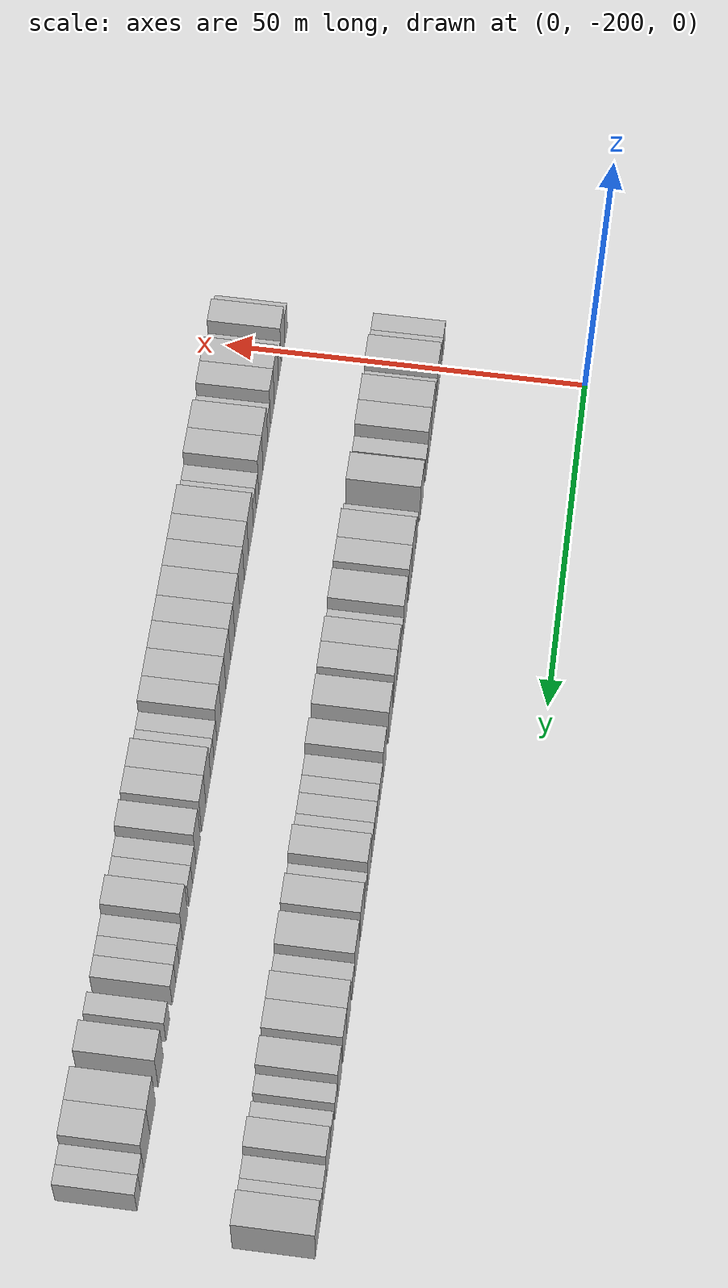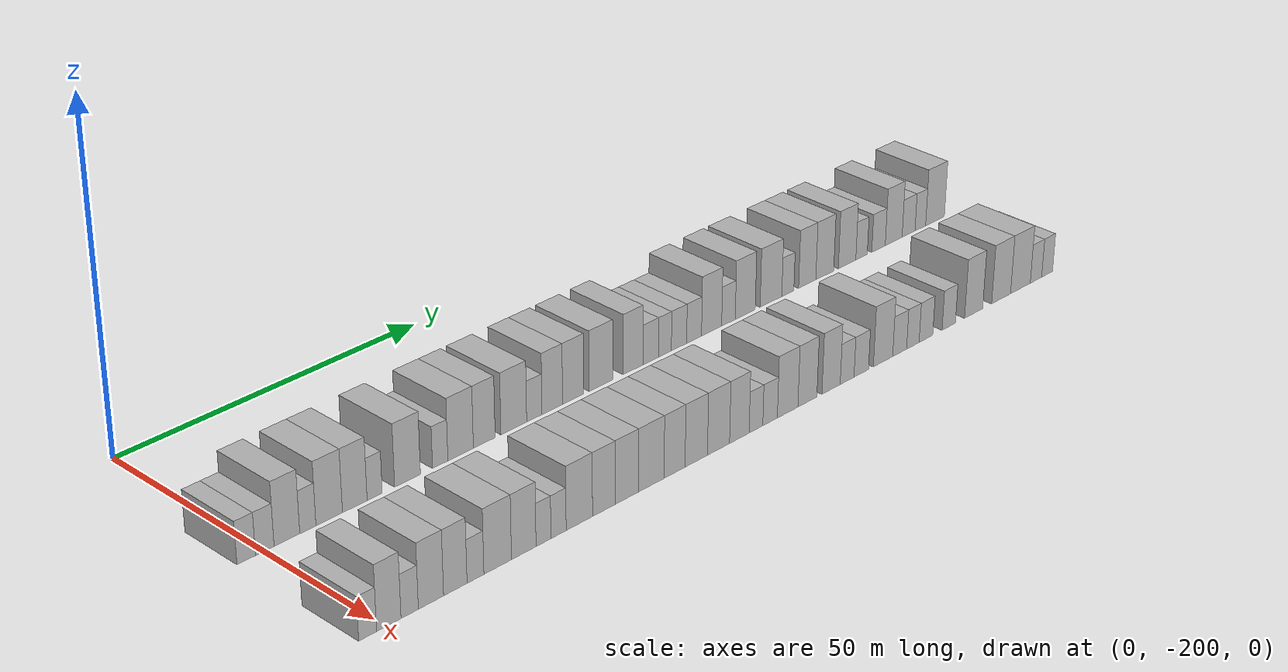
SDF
<sdf version="1.6">
 <world name="default">
  <model name="building_1">
   <static>1</static>
   <pose>25.0000 -202.6168 0 0.000000 0.000000 0.000000</pose>
   <link name="link">
    <pose>0 0 3.00 0 0 0</pose>
    <collision name="collision"><geometry><box><size>10.0000 2.7663 6.0000</size></box></geometry></collision>
    <visual name="visual">
     <cast_shadows>0</cast_shadows>
     <geometry><box><size>10.0000 2.7663 6.0000</size></box></geometry>
     <material>
      <script>
       <uri>model://HANNAS_wall/materials/scripts</uri>
       <uri>model://HANNAS_wall/materials/textures</uri>
       <name>vrc/HANNAS_wall</name>
      </script>
     </material>
    </visual>
   </link>
  </model>
  <model name="building_2">
   <static>1</static>
   <pose>25.0000 -199.8396 0 0.000000 0.000000 0.000000</pose>
   <link name="link">
    <pose>0 0 3.00 0 0 0</pose>
    <collision name="collision"><geometry><box><size>10.0000 2.7883 6.0000</size></box></geometry></collision>
    <visual name="visual">
     <cast_shadows>0</cast_shadows>
     <geometry><box><size>10.0000 2.7883 6.0000</size></box></geometry>
     <material>
      <script>
       <uri>model://HANNAS_wall/materials/scripts</uri>
       <uri>model://HANNAS_wall/materials/textures</uri>
       <name>vrc/HANNAS_wall</name>
      </script>
     </material>
    </visual>
   </link>
  </model>
  <model name="building_3">
   <static>1</static>
   <pose>25.0000 -196.4880 0 0.000000 0.000000 0.000000</pose>
   <link name="link">
    <pose>0 0 4.50 0 0 0</pose>
    <collision name="collision"><geometry><box><size>10.0000 3.9148 9.0000</size></box></geometry></collision>
    <visual name="visual">
     <cast_shadows>0</cast_shadows>
     <geometry><box><size>10.0000 3.9148 9.0000</size></box></geometry>
     <material>
      <script>
       <uri>model://HANNAS_wall/materials/scripts</uri>
       <uri>model://HANNAS_wall/materials/textures</uri>
       <name>vrc/HANNAS_wall</name>
      </script>
     </material>
    </visual>
   </link>
  </model>
  <model name="building_4">
   <static>1</static>
   <pose>25.0000 -193.2830 0 0.000000 0.000000 0.000000</pose>
   <link name="link">
    <pose>0 0 3.00 0 0 0</pose>
    <collision name="collision"><geometry><box><size>10.0000 2.4952 6.0000</size></box></geometry></collision>
    <visual name="visual">
     <cast_shadows>0</cast_shadows>
     <geometry><box><size>10.0000 2.4952 6.0000</size></box></geometry>
     <material>
      <script>
       <uri>model://HANNAS_wall/materials/scripts</uri>
       <uri>model://HANNAS_wall/materials/textures</uri>
       <name>vrc/HANNAS_wall</name>
      </script>
     </material>
    </visual>
   </link>
  </model>
  <model name="building_5">
   <static>1</static>
   <pose>25.0000 -189.9622 0 0.000000 0.000000 0.000000</pose>
   <link name="link">
    <pose>0 0 4.50 0 0 0</pose>
    <collision name="collision"><geometry><box><size>10.0000 4.1462 9.0000</size></box></geometry></collision>
    <visual name="visual">
     <cast_shadows>0</cast_shadows>
     <geometry><box><size>10.0000 4.1462 9.0000</size></box></geometry>
     <material>
      <script>
       <uri>model://HANNAS_wall/materials/scripts</uri>
       <uri>model://HANNAS_wall/materials/textures</uri>
       <name>vrc/HANNAS_wall</name>
      </script>
     </material>
    </visual>
   </link>
  </model>
  <model name="building_6">
   <static>1</static>
   <pose>25.0000 -185.9337 0 0.000000 0.000000 0.000000</pose>
   <link name="link">
    <pose>0 0 4.50 0 0 0</pose>
    <collision name="collision"><geometry><box><size>10.0000 3.9107 9.0000</size></box></geometry></collision>
    <visual name="visual">
     <cast_shadows>0</cast_shadows>
     <geometry><box><size>10.0000 3.9107 9.0000</size></box></geometry>
     <material>
      <script>
       <uri>model://HANNAS_wall/materials/scripts</uri>
       <uri>model://HANNAS_wall/materials/textures</uri>
       <name>vrc/HANNAS_wall</name>
      </script>
     </material>
    </visual>
   </link>
  </model>
  <model name="building_7">
   <static>1</static>
   <pose>25.0000 -182.7652 0 0.000000 0.000000 0.000000</pose>
   <link name="link">
    <pose>0 0 3.00 0 0 0</pose>
    <collision name="collision"><geometry><box><size>10.0000 2.4263 6.0000</size></box></geometry></collision>
    <visual name="visual">
     <cast_shadows>0</cast_shadows>
     <geometry><box><size>10.0000 2.4263 6.0000</size></box></geometry>
     <material>
      <script>
       <uri>model://HANNAS_wall/materials/scripts</uri>
       <uri>model://HANNAS_wall/materials/textures</uri>
       <name>vrc/HANNAS_wall</name>
      </script>
     </material>
    </visual>
   </link>
  </model>
  <model name="building_8">
   <static>1</static>
   <pose>25.0000 -177.4382 0 0.000000 0.000000 0.000000</pose>
   <link name="link">
    <pose>0 0 4.50 0 0 0</pose>
    <collision name="collision"><geometry><box><size>10.0000 4.2277 9.0000</size></box></geometry></collision>
    <visual name="visual">
     <cast_shadows>0</cast_shadows>
     <geometry><box><size>10.0000 4.2277 9.0000</size></box></geometry>
     <material>
      <script>
       <uri>model://HANNAS_wall/materials/scripts</uri>
       <uri>model://HANNAS_wall/materials/textures</uri>
       <name>vrc/HANNAS_wall</name>
      </script>
     </material>
    </visual>
   </link>
  </model>
  <model name="building_9">
   <static>1</static>
   <pose>25.0000 -172.0418 0 0.000000 0.000000 0.000000</pose>
   <link name="link">
    <pose>0 0 3.00 0 0 0</pose>
    <collision name="collision"><geometry><box><size>10.0000 2.5651 6.0000</size></box></geometry></collision>
    <visual name="visual">
     <cast_shadows>0</cast_shadows>
     <geometry><box><size>10.0000 2.5651 6.0000</size></box></geometry>
     <material>
      <script>
       <uri>model://HANNAS_wall/materials/scripts</uri>
       <uri>model://HANNAS_wall/materials/textures</uri>
       <name>vrc/HANNAS_wall</name>
      </script>
     </material>
    </visual>
   </link>
  </model>
  <model name="building_10">
   <static>1</static>
   <pose>25.0000 -168.6014 0 0.000000 0.000000 0.000000</pose>
   <link name="link">
    <pose>0 0 4.50 0 0 0</pose>
    <collision name="collision"><geometry><box><size>10.0000 4.3157 9.0000</size></box></geometry></collision>
    <visual name="visual">
     <cast_shadows>0</cast_shadows>
     <geometry><box><size>10.0000 4.3157 9.0000</size></box></geometry>
     <material>
      <script>
       <uri>model://HANNAS_wall/materials/scripts</uri>
       <uri>model://HANNAS_wall/materials/textures</uri>
       <name>vrc/HANNAS_wall</name>
      </script>
     </material>
    </visual>
   </link>
  </model>
  <model name="building_11">
   <static>1</static>
   <pose>25.0000 -164.5795 0 0.000000 0.000000 0.000000</pose>
   <link name="link">
    <pose>0 0 4.50 0 0 0</pose>
    <collision name="collision"><geometry><box><size>10.0000 3.7280 9.0000</size></box></geometry></collision>
    <visual name="visual">
     <cast_shadows>0</cast_shadows>
     <geometry><box><size>10.0000 3.7280 9.0000</size></box></geometry>
     <material>
      <script>
       <uri>model://HANNAS_wall/materials/scripts</uri>
       <uri>model://HANNAS_wall/materials/textures</uri>
       <name>vrc/HANNAS_wall</name>
      </script>
     </material>
    </visual>
   </link>
  </model>
  <model name="building_12">
   <static>1</static>
   <pose>25.0000 -159.4663 0 0.000000 0.000000 0.000000</pose>
   <link name="link">
    <pose>0 0 4.50 0 0 0</pose>
    <collision name="collision"><geometry><box><size>10.0000 4.4984 9.0000</size></box></geometry></collision>
    <visual name="visual">
     <cast_shadows>0</cast_shadows>
     <geometry><box><size>10.0000 4.4984 9.0000</size></box></geometry>
     <material>
      <script>
       <uri>model://HANNAS_wall/materials/scripts</uri>
       <uri>model://HANNAS_wall/materials/textures</uri>
       <name>vrc/HANNAS_wall</name>
      </script>
     </material>
    </visual>
   </link>
  </model>
  <model name="building_13">
   <static>1</static>
   <pose>25.0000 -155.8630 0 0.000000 0.000000 0.000000</pose>
   <link name="link">
    <pose>0 0 3.00 0 0 0</pose>
    <collision name="collision"><geometry><box><size>10.0000 2.7081 6.0000</size></box></geometry></collision>
    <visual name="visual">
     <cast_shadows>0</cast_shadows>
     <geometry><box><size>10.0000 2.7081 6.0000</size></box></geometry>
     <material>
      <script>
       <uri>model://HANNAS_wall/materials/scripts</uri>
       <uri>model://HANNAS_wall/materials/textures</uri>
       <name>vrc/HANNAS_wall</name>
      </script>
     </material>
    </visual>
   </link>
  </model>
  <model name="building_14">
   <static>1</static>
   <pose>25.0000 -152.6666 0 0.000000 0.000000 0.000000</pose>
   <link name="link">
    <pose>0 0 4.50 0 0 0</pose>
    <collision name="collision"><geometry><box><size>10.0000 3.6848 9.0000</size></box></geometry></collision>
    <visual name="visual">
     <cast_shadows>0</cast_shadows>
     <geometry><box><size>10.0000 3.6848 9.0000</size></box></geometry>
     <material>
      <script>
       <uri>model://HANNAS_wall/materials/scripts</uri>
       <uri>model://HANNAS_wall/materials/textures</uri>
       <name>vrc/HANNAS_wall</name>
      </script>
     </material>
    </visual>
   </link>
  </model>
  <model name="building_15">
   <static>1</static>
   <pose>25.0000 -148.9209 0 0.000000 0.000000 0.000000</pose>
   <link name="link">
    <pose>0 0 4.50 0 0 0</pose>
    <collision name="collision"><geometry><box><size>10.0000 3.8066 9.0000</size></box></geometry></collision>
    <visual name="visual">
     <cast_shadows>0</cast_shadows>
     <geometry><box><size>10.0000 3.8066 9.0000</size></box></geometry>
     <material>
      <script>
       <uri>model://HANNAS_wall/materials/scripts</uri>
       <uri>model://HANNAS_wall/materials/textures</uri>
       <name>vrc/HANNAS_wall</name>
      </script>
     </material>
    </visual>
   </link>
  </model>
  <model name="building_16">
   <static>1</static>
   <pose>25.0000 -143.8390 0 0.000000 0.000000 0.000000</pose>
   <link name="link">
    <pose>0 0 4.50 0 0 0</pose>
    <collision name="collision"><geometry><box><size>10.0000 4.3572 9.0000</size></box></geometry></collision>
    <visual name="visual">
     <cast_shadows>0</cast_shadows>
     <geometry><box><size>10.0000 4.3572 9.0000</size></box></geometry>
     <material>
      <script>
       <uri>model://HANNAS_wall/materials/scripts</uri>
       <uri>model://HANNAS_wall/materials/textures</uri>
       <name>vrc/HANNAS_wall</name>
      </script>
     </material>
    </visual>
   </link>
  </model>
  <model name="building_17">
   <static>1</static>
   <pose>25.0000 -137.8147 0 0.000000 0.000000 0.000000</pose>
   <link name="link">
    <pose>0 0 4.50 0 0 0</pose>
    <collision name="collision"><geometry><box><size>10.0000 3.6914 9.0000</size></box></geometry></collision>
    <visual name="visual">
     <cast_shadows>0</cast_shadows>
     <geometry><box><size>10.0000 3.6914 9.0000</size></box></geometry>
     <material>
      <script>
       <uri>model://HANNAS_wall/materials/scripts</uri>
       <uri>model://HANNAS_wall/materials/textures</uri>
       <name>vrc/HANNAS_wall</name>
      </script>
     </material>
    </visual>
   </link>
  </model>
  <model name="building_18">
   <static>1</static>
   <pose>25.0000 -134.4775 0 0.000000 0.000000 0.000000</pose>
   <link name="link">
    <pose>0 0 3.00 0 0 0</pose>
    <collision name="collision"><geometry><box><size>10.0000 2.9829 6.0000</size></box></geometry></collision>
    <visual name="visual">
     <cast_shadows>0</cast_shadows>
     <geometry><box><size>10.0000 2.9829 6.0000</size></box></geometry>
     <material>
      <script>
       <uri>model://HANNAS_wall/materials/scripts</uri>
       <uri>model://HANNAS_wall/materials/textures</uri>
       <name>vrc/HANNAS_wall</name>
      </script>
     </material>
    </visual>
   </link>
  </model>
  <model name="building_19">
   <static>1</static>
   <pose>25.0000 -131.7495 0 0.000000 0.000000 0.000000</pose>
   <link name="link">
    <pose>0 0 3.00 0 0 0</pose>
    <collision name="collision"><geometry><box><size>10.0000 2.4731 6.0000</size></box></geometry></collision>
    <visual name="visual">
     <cast_shadows>0</cast_shadows>
     <geometry><box><size>10.0000 2.4731 6.0000</size></box></geometry>
     <material>
      <script>
       <uri>model://HANNAS_wall/materials/scripts</uri>
       <uri>model://HANNAS_wall/materials/textures</uri>
       <name>vrc/HANNAS_wall</name>
      </script>
     </material>
    </visual>
   </link>
  </model>
  <model name="building_20">
   <static>1</static>
   <pose>25.0000 -129.0263 0 0.000000 0.000000 0.000000</pose>
   <link name="link">
    <pose>0 0 3.00 0 0 0</pose>
    <collision name="collision"><geometry><box><size>10.0000 2.9733 6.0000</size></box></geometry></collision>
    <visual name="visual">
     <cast_shadows>0</cast_shadows>
     <geometry><box><size>10.0000 2.9733 6.0000</size></box></geometry>
     <material>
      <script>
       <uri>model://HANNAS_wall/materials/scripts</uri>
       <uri>model://HANNAS_wall/materials/textures</uri>
       <name>vrc/HANNAS_wall</name>
      </script>
     </material>
    </visual>
   </link>
  </model>
  <model name="building_21">
   <static>1</static>
   <pose>25.0000 -126.0810 0 0.000000 0.000000 0.000000</pose>
   <link name="link">
    <pose>0 0 3.00 0 0 0</pose>
    <collision name="collision"><geometry><box><size>10.0000 2.9173 6.0000</size></box></geometry></collision>
    <visual name="visual">
     <cast_shadows>0</cast_shadows>
     <geometry><box><size>10.0000 2.9173 6.0000</size></box></geometry>
     <material>
      <script>
       <uri>model://HANNAS_wall/materials/scripts</uri>
       <uri>model://HANNAS_wall/materials/textures</uri>
       <name>vrc/HANNAS_wall</name>
      </script>
     </material>
    </visual>
   </link>
  </model>
  <model name="building_22">
   <static>1</static>
   <pose>25.0000 -122.6243 0 0.000000 0.000000 0.000000</pose>
   <link name="link">
    <pose>0 0 4.50 0 0 0</pose>
    <collision name="collision"><geometry><box><size>10.0000 3.9963 9.0000</size></box></geometry></collision>
    <visual name="visual">
     <cast_shadows>0</cast_shadows>
     <geometry><box><size>10.0000 3.9963 9.0000</size></box></geometry>
     <material>
      <script>
       <uri>model://HANNAS_wall/materials/scripts</uri>
       <uri>model://HANNAS_wall/materials/textures</uri>
       <name>vrc/HANNAS_wall</name>
      </script>
     </material>
    </visual>
   </link>
  </model>
  <model name="building_23">
   <static>1</static>
   <pose>25.0000 -119.2623 0 0.000000 0.000000 0.000000</pose>
   <link name="link">
    <pose>0 0 3.00 0 0 0</pose>
    <collision name="collision"><geometry><box><size>10.0000 2.7276 6.0000</size></box></geometry></collision>
    <visual name="visual">
     <cast_shadows>0</cast_shadows>
     <geometry><box><size>10.0000 2.7276 6.0000</size></box></geometry>
     <material>
      <script>
       <uri>model://HANNAS_wall/materials/scripts</uri>
       <uri>model://HANNAS_wall/materials/textures</uri>
       <name>vrc/HANNAS_wall</name>
      </script>
     </material>
    </visual>
   </link>
  </model>
  <model name="building_24">
   <static>1</static>
   <pose>25.0000 -115.8694 0 0.000000 0.000000 0.000000</pose>
   <link name="link">
    <pose>0 0 4.50 0 0 0</pose>
    <collision name="collision"><geometry><box><size>10.0000 4.0582 9.0000</size></box></geometry></collision>
    <visual name="visual">
     <cast_shadows>0</cast_shadows>
     <geometry><box><size>10.0000 4.0582 9.0000</size></box></geometry>
     <material>
      <script>
       <uri>model://HANNAS_wall/materials/scripts</uri>
       <uri>model://HANNAS_wall/materials/textures</uri>
       <name>vrc/HANNAS_wall</name>
      </script>
     </material>
    </visual>
   </link>
  </model>
  <model name="building_25">
   <static>1</static>
   <pose>25.0000 -110.6020 0 0.000000 0.000000 0.000000</pose>
   <link name="link">
    <pose>0 0 4.50 0 0 0</pose>
    <collision name="collision"><geometry><box><size>10.0000 4.4767 9.0000</size></box></geometry></collision>
    <visual name="visual">
     <cast_shadows>0</cast_shadows>
     <geometry><box><size>10.0000 4.4767 9.0000</size></box></geometry>
     <material>
      <script>
       <uri>model://HANNAS_wall/materials/scripts</uri>
       <uri>model://HANNAS_wall/materials/textures</uri>
       <name>vrc/HANNAS_wall</name>
      </script>
     </material>
    </visual>
   </link>
  </model>
  <model name="building_26">
   <static>1</static>
   <pose>25.0000 -107.1024 0 0.000000 0.000000 0.000000</pose>
   <link name="link">
    <pose>0 0 3.00 0 0 0</pose>
    <collision name="collision"><geometry><box><size>10.0000 2.5225 6.0000</size></box></geometry></collision>
    <visual name="visual">
     <cast_shadows>0</cast_shadows>
     <geometry><box><size>10.0000 2.5225 6.0000</size></box></geometry>
     <material>
      <script>
       <uri>model://HANNAS_wall/materials/scripts</uri>
       <uri>model://HANNAS_wall/materials/textures</uri>
       <name>vrc/HANNAS_wall</name>
      </script>
     </material>
    </visual>
   </link>
  </model>
  <model name="building_27">
   <static>1</static>
   <pose>25.0000 -103.0135 0 0.000000 0.000000 0.000000</pose>
   <link name="link">
    <pose>0 0 4.50 0 0 0</pose>
    <collision name="collision"><geometry><box><size>10.0000 3.6551 9.0000</size></box></geometry></collision>
    <visual name="visual">
     <cast_shadows>0</cast_shadows>
     <geometry><box><size>10.0000 3.6551 9.0000</size></box></geometry>
     <material>
      <script>
       <uri>model://HANNAS_wall/materials/scripts</uri>
       <uri>model://HANNAS_wall/materials/textures</uri>
       <name>vrc/HANNAS_wall</name>
      </script>
     </material>
    </visual>
   </link>
  </model>
  <model name="building_28">
   <static>1</static>
   <pose>25.0000 -99.2691 0 0.000000 0.000000 0.000000</pose>
   <link name="link">
    <pose>0 0 4.50 0 0 0</pose>
    <collision name="collision"><geometry><box><size>10.0000 3.8337 9.0000</size></box></geometry></collision>
    <visual name="visual">
     <cast_shadows>0</cast_shadows>
     <geometry><box><size>10.0000 3.8337 9.0000</size></box></geometry>
     <material>
      <script>
       <uri>model://HANNAS_wall/materials/scripts</uri>
       <uri>model://HANNAS_wall/materials/textures</uri>
       <name>vrc/HANNAS_wall</name>
      </script>
     </material>
    </visual>
   </link>
  </model>
  <model name="building_29">
   <static>1</static>
   <pose>25.0000 -94.4503 0 0.000000 0.000000 0.000000</pose>
   <link name="link">
    <pose>0 0 4.50 0 0 0</pose>
    <collision name="collision"><geometry><box><size>10.0000 3.8038 9.0000</size></box></geometry></collision>
    <visual name="visual">
     <cast_shadows>0</cast_shadows>
     <geometry><box><size>10.0000 3.8038 9.0000</size></box></geometry>
     <material>
      <script>
       <uri>model://HANNAS_wall/materials/scripts</uri>
       <uri>model://HANNAS_wall/materials/textures</uri>
       <name>vrc/HANNAS_wall</name>
      </script>
     </material>
    </visual>
   </link>
  </model>
  <model name="building_30">
   <static>1</static>
   <pose>25.0000 -91.2841 0 0.000000 0.000000 0.000000</pose>
   <link name="link">
    <pose>0 0 3.00 0 0 0</pose>
    <collision name="collision"><geometry><box><size>10.0000 2.5287 6.0000</size></box></geometry></collision>
    <visual name="visual">
     <cast_shadows>0</cast_shadows>
     <geometry><box><size>10.0000 2.5287 6.0000</size></box></geometry>
     <material>
      <script>
       <uri>model://HANNAS_wall/materials/scripts</uri>
       <uri>model://HANNAS_wall/materials/textures</uri>
       <name>vrc/HANNAS_wall</name>
      </script>
     </material>
    </visual>
   </link>
  </model>
  <model name="building_31">
   <static>1</static>
   <pose>25.0000 -87.5224 0 0.000000 0.000000 0.000000</pose>
   <link name="link">
    <pose>0 0 3.00 0 0 0</pose>
    <collision name="collision"><geometry><box><size>10.0000 2.9947 6.0000</size></box></geometry></collision>
    <visual name="visual">
     <cast_shadows>0</cast_shadows>
     <geometry><box><size>10.0000 2.9947 6.0000</size></box></geometry>
     <material>
      <script>
       <uri>model://HANNAS_wall/materials/scripts</uri>
       <uri>model://HANNAS_wall/materials/textures</uri>
       <name>vrc/HANNAS_wall</name>
      </script>
     </material>
    </visual>
   </link>
  </model>
  <model name="building_32">
   <static>1</static>
   <pose>25.0000 -84.1280 0 0.000000 0.000000 0.000000</pose>
   <link name="link">
    <pose>0 0 4.50 0 0 0</pose>
    <collision name="collision"><geometry><box><size>10.0000 3.7940 9.0000</size></box></geometry></collision>
    <visual name="visual">
     <cast_shadows>0</cast_shadows>
     <geometry><box><size>10.0000 3.7940 9.0000</size></box></geometry>
     <material>
      <script>
       <uri>model://HANNAS_wall/materials/scripts</uri>
       <uri>model://HANNAS_wall/materials/textures</uri>
       <name>vrc/HANNAS_wall</name>
      </script>
     </material>
    </visual>
   </link>
  </model>
  <model name="building_33">
   <static>1</static>
   <pose>25.0000 -80.7663 0 0.000000 0.000000 0.000000</pose>
   <link name="link">
    <pose>0 0 3.00 0 0 0</pose>
    <collision name="collision"><geometry><box><size>10.0000 2.9295 6.0000</size></box></geometry></collision>
    <visual name="visual">
     <cast_shadows>0</cast_shadows>
     <geometry><box><size>10.0000 2.9295 6.0000</size></box></geometry>
     <material>
      <script>
       <uri>model://HANNAS_wall/materials/scripts</uri>
       <uri>model://HANNAS_wall/materials/textures</uri>
       <name>vrc/HANNAS_wall</name>
      </script>
     </material>
    </visual>
   </link>
  </model>
  <model name="building_34">
   <static>1</static>
   <pose>25.0000 -78.0802 0 0.000000 0.000000 0.000000</pose>
   <link name="link">
    <pose>0 0 3.00 0 0 0</pose>
    <collision name="collision"><geometry><box><size>10.0000 2.4427 6.0000</size></box></geometry></collision>
    <visual name="visual">
     <cast_shadows>0</cast_shadows>
     <geometry><box><size>10.0000 2.4427 6.0000</size></box></geometry>
     <material>
      <script>
       <uri>model://HANNAS_wall/materials/scripts</uri>
       <uri>model://HANNAS_wall/materials/textures</uri>
       <name>vrc/HANNAS_wall</name>
      </script>
     </material>
    </visual>
   </link>
  </model>
  <model name="building_35">
   <static>1</static>
   <pose>25.0000 -74.6875 0 0.000000 0.000000 0.000000</pose>
   <link name="link">
    <pose>0 0 4.50 0 0 0</pose>
    <collision name="collision"><geometry><box><size>10.0000 4.3428 9.0000</size></box></geometry></collision>
    <visual name="visual">
     <cast_shadows>0</cast_shadows>
     <geometry><box><size>10.0000 4.3428 9.0000</size></box></geometry>
     <material>
      <script>
       <uri>model://HANNAS_wall/materials/scripts</uri>
       <uri>model://HANNAS_wall/materials/textures</uri>
       <name>vrc/HANNAS_wall</name>
      </script>
     </material>
    </visual>
   </link>
  </model>
  <model name="building_105">
   <static>1</static>
   <pose>47.0000 -202.6764 0 0.000000 0.000000 0.000000</pose>
   <link name="link">
    <pose>0 0 3.00 0 0 0</pose>
    <collision name="collision"><geometry><box><size>10.0000 2.6473 6.0000</size></box></geometry></collision>
    <visual name="visual">
     <cast_shadows>0</cast_shadows>
     <geometry><box><size>10.0000 2.6473 6.0000</size></box></geometry>
     <material>
      <script>
       <uri>model://HANNAS_wall/materials/scripts</uri>
       <uri>model://HANNAS_wall/materials/textures</uri>
       <name>vrc/HANNAS_wall</name>
      </script>
     </material>
    </visual>
   </link>
  </model>
  <model name="building_106">
   <static>1</static>
   <pose>47.0000 -199.5240 0 0.000000 0.000000 0.000000</pose>
   <link name="link">
    <pose>0 0 4.50 0 0 0</pose>
    <collision name="collision"><geometry><box><size>10.0000 3.6574 9.0000</size></box></geometry></collision>
    <visual name="visual">
     <cast_shadows>0</cast_shadows>
     <geometry><box><size>10.0000 3.6574 9.0000</size></box></geometry>
     <material>
      <script>
       <uri>model://HANNAS_wall/materials/scripts</uri>
       <uri>model://HANNAS_wall/materials/textures</uri>
       <name>vrc/HANNAS_wall</name>
      </script>
     </material>
    </visual>
   </link>
  </model>
  <model name="building_107">
   <static>1</static>
   <pose>47.0000 -196.3835 0 0.000000 0.000000 0.000000</pose>
   <link name="link">
    <pose>0 0 3.00 0 0 0</pose>
    <collision name="collision"><geometry><box><size>10.0000 2.6236 6.0000</size></box></geometry></collision>
    <visual name="visual">
     <cast_shadows>0</cast_shadows>
     <geometry><box><size>10.0000 2.6236 6.0000</size></box></geometry>
     <material>
      <script>
       <uri>model://HANNAS_wall/materials/scripts</uri>
       <uri>model://HANNAS_wall/materials/textures</uri>
       <name>vrc/HANNAS_wall</name>
      </script>
     </material>
    </visual>
   </link>
  </model>
  <model name="building_108">
   <static>1</static>
   <pose>47.0000 -193.1352 0 0.000000 0.000000 0.000000</pose>
   <link name="link">
    <pose>0 0 4.50 0 0 0</pose>
    <collision name="collision"><geometry><box><size>10.0000 3.8731 9.0000</size></box></geometry></collision>
    <visual name="visual">
     <cast_shadows>0</cast_shadows>
     <geometry><box><size>10.0000 3.8731 9.0000</size></box></geometry>
     <material>
      <script>
       <uri>model://HANNAS_wall/materials/scripts</uri>
       <uri>model://HANNAS_wall/materials/textures</uri>
       <name>vrc/HANNAS_wall</name>
      </script>
     </material>
    </visual>
   </link>
  </model>
  <model name="building_109">
   <static>1</static>
   <pose>47.0000 -189.3740 0 0.000000 0.000000 0.000000</pose>
   <link name="link">
    <pose>0 0 4.50 0 0 0</pose>
    <collision name="collision"><geometry><box><size>10.0000 3.6494 9.0000</size></box></geometry></collision>
    <visual name="visual">
     <cast_shadows>0</cast_shadows>
     <geometry><box><size>10.0000 3.6494 9.0000</size></box></geometry>
     <material>
      <script>
       <uri>model://HANNAS_wall/materials/scripts</uri>
       <uri>model://HANNAS_wall/materials/textures</uri>
       <name>vrc/HANNAS_wall</name>
      </script>
     </material>
    </visual>
   </link>
  </model>
  <model name="building_110">
   <static>1</static>
   <pose>47.0000 -186.2199 0 0.000000 0.000000 0.000000</pose>
   <link name="link">
    <pose>0 0 3.00 0 0 0</pose>
    <collision name="collision"><geometry><box><size>10.0000 2.6587 6.0000</size></box></geometry></collision>
    <visual name="visual">
     <cast_shadows>0</cast_shadows>
     <geometry><box><size>10.0000 2.6587 6.0000</size></box></geometry>
     <material>
      <script>
       <uri>model://HANNAS_wall/materials/scripts</uri>
       <uri>model://HANNAS_wall/materials/textures</uri>
       <name>vrc/HANNAS_wall</name>
      </script>
     </material>
    </visual>
   </link>
  </model>
  <model name="building_111">
   <static>1</static>
   <pose>47.0000 -182.6890 0 0.000000 0.000000 0.000000</pose>
   <link name="link">
    <pose>0 0 4.50 0 0 0</pose>
    <collision name="collision"><geometry><box><size>10.0000 4.4032 9.0000</size></box></geometry></collision>
    <visual name="visual">
     <cast_shadows>0</cast_shadows>
     <geometry><box><size>10.0000 4.4032 9.0000</size></box></geometry>
     <material>
      <script>
       <uri>model://HANNAS_wall/materials/scripts</uri>
       <uri>model://HANNAS_wall/materials/textures</uri>
       <name>vrc/HANNAS_wall</name>
      </script>
     </material>
    </visual>
   </link>
  </model>
  <model name="building_112">
   <static>1</static>
   <pose>47.0000 -178.4929 0 0.000000 0.000000 0.000000</pose>
   <link name="link">
    <pose>0 0 4.50 0 0 0</pose>
    <collision name="collision"><geometry><box><size>10.0000 3.9890 9.0000</size></box></geometry></collision>
    <visual name="visual">
     <cast_shadows>0</cast_shadows>
     <geometry><box><size>10.0000 3.9890 9.0000</size></box></geometry>
     <material>
      <script>
       <uri>model://HANNAS_wall/materials/scripts</uri>
       <uri>model://HANNAS_wall/materials/textures</uri>
       <name>vrc/HANNAS_wall</name>
      </script>
     </material>
    </visual>
   </link>
  </model>
  <model name="building_113">
   <static>1</static>
   <pose>47.0000 -175.2743 0 0.000000 0.000000 0.000000</pose>
   <link name="link">
    <pose>0 0 3.00 0 0 0</pose>
    <collision name="collision"><geometry><box><size>10.0000 2.4483 6.0000</size></box></geometry></collision>
    <visual name="visual">
     <cast_shadows>0</cast_shadows>
     <geometry><box><size>10.0000 2.4483 6.0000</size></box></geometry>
     <material>
      <script>
       <uri>model://HANNAS_wall/materials/scripts</uri>
       <uri>model://HANNAS_wall/materials/textures</uri>
       <name>vrc/HANNAS_wall</name>
      </script>
     </material>
    </visual>
   </link>
  </model>
  <model name="building_114">
   <static>1</static>
   <pose>47.0000 -172.7861 0 0.000000 0.000000 0.000000</pose>
   <link name="link">
    <pose>0 0 3.00 0 0 0</pose>
    <collision name="collision"><geometry><box><size>10.0000 2.5281 6.0000</size></box></geometry></collision>
    <visual name="visual">
     <cast_shadows>0</cast_shadows>
     <geometry><box><size>10.0000 2.5281 6.0000</size></box></geometry>
     <material>
      <script>
       <uri>model://HANNAS_wall/materials/scripts</uri>
       <uri>model://HANNAS_wall/materials/textures</uri>
       <name>vrc/HANNAS_wall</name>
      </script>
     </material>
    </visual>
   </link>
  </model>
  <model name="building_115">
   <static>1</static>
   <pose>47.0000 -169.3063 0 0.000000 0.000000 0.000000</pose>
   <link name="link">
    <pose>0 0 4.50 0 0 0</pose>
    <collision name="collision"><geometry><box><size>10.0000 4.4316 9.0000</size></box></geometry></collision>
    <visual name="visual">
     <cast_shadows>0</cast_shadows>
     <geometry><box><size>10.0000 4.4316 9.0000</size></box></geometry>
     <material>
      <script>
       <uri>model://HANNAS_wall/materials/scripts</uri>
       <uri>model://HANNAS_wall/materials/textures</uri>
       <name>vrc/HANNAS_wall</name>
      </script>
     </material>
    </visual>
   </link>
  </model>
  <model name="building_116">
   <static>1</static>
   <pose>47.0000 -165.1490 0 0.000000 0.000000 0.000000</pose>
   <link name="link">
    <pose>0 0 4.50 0 0 0</pose>
    <collision name="collision"><geometry><box><size>10.0000 3.8829 9.0000</size></box></geometry></collision>
    <visual name="visual">
     <cast_shadows>0</cast_shadows>
     <geometry><box><size>10.0000 3.8829 9.0000</size></box></geometry>
     <material>
      <script>
       <uri>model://HANNAS_wall/materials/scripts</uri>
       <uri>model://HANNAS_wall/materials/textures</uri>
       <name>vrc/HANNAS_wall</name>
      </script>
     </material>
    </visual>
   </link>
  </model>
  <model name="building_117">
   <static>1</static>
   <pose>47.0000 -161.1801 0 0.000000 0.000000 0.000000</pose>
   <link name="link">
    <pose>0 0 4.50 0 0 0</pose>
    <collision name="collision"><geometry><box><size>10.0000 4.0551 9.0000</size></box></geometry></collision>
    <visual name="visual">
     <cast_shadows>0</cast_shadows>
     <geometry><box><size>10.0000 4.0551 9.0000</size></box></geometry>
     <material>
      <script>
       <uri>model://HANNAS_wall/materials/scripts</uri>
       <uri>model://HANNAS_wall/materials/textures</uri>
       <name>vrc/HANNAS_wall</name>
      </script>
     </material>
    </visual>
   </link>
  </model>
  <model name="building_118">
   <static>1</static>
   <pose>47.0000 -156.9096 0 0.000000 0.000000 0.000000</pose>
   <link name="link">
    <pose>0 0 4.50 0 0 0</pose>
    <collision name="collision"><geometry><box><size>10.0000 4.4857 9.0000</size></box></geometry></collision>
    <visual name="visual">
     <cast_shadows>0</cast_shadows>
     <geometry><box><size>10.0000 4.4857 9.0000</size></box></geometry>
     <material>
      <script>
       <uri>model://HANNAS_wall/materials/scripts</uri>
       <uri>model://HANNAS_wall/materials/textures</uri>
       <name>vrc/HANNAS_wall</name>
      </script>
     </material>
    </visual>
   </link>
  </model>
  <model name="building_119">
   <static>1</static>
   <pose>47.0000 -152.7851 0 0.000000 0.000000 0.000000</pose>
   <link name="link">
    <pose>0 0 4.50 0 0 0</pose>
    <collision name="collision"><geometry><box><size>10.0000 3.7633 9.0000</size></box></geometry></collision>
    <visual name="visual">
     <cast_shadows>0</cast_shadows>
     <geometry><box><size>10.0000 3.7633 9.0000</size></box></geometry>
     <material>
      <script>
       <uri>model://HANNAS_wall/materials/scripts</uri>
       <uri>model://HANNAS_wall/materials/textures</uri>
       <name>vrc/HANNAS_wall</name>
      </script>
     </material>
    </visual>
   </link>
  </model>
  <model name="building_120">
   <static>1</static>
   <pose>47.0000 -148.8739 0 0.000000 0.000000 0.000000</pose>
   <link name="link">
    <pose>0 0 4.50 0 0 0</pose>
    <collision name="collision"><geometry><box><size>10.0000 4.0591 9.0000</size></box></geometry></collision>
    <visual name="visual">
     <cast_shadows>0</cast_shadows>
     <geometry><box><size>10.0000 4.0591 9.0000</size></box></geometry>
     <material>
      <script>
       <uri>model://HANNAS_wall/materials/scripts</uri>
       <uri>model://HANNAS_wall/materials/textures</uri>
       <name>vrc/HANNAS_wall</name>
      </script>
     </material>
    </visual>
   </link>
  </model>
  <model name="building_121">
   <static>1</static>
   <pose>47.0000 -144.8052 0 0.000000 0.000000 0.000000</pose>
   <link name="link">
    <pose>0 0 4.50 0 0 0</pose>
    <collision name="collision"><geometry><box><size>10.0000 4.0784 9.0000</size></box></geometry></collision>
    <visual name="visual">
     <cast_shadows>0</cast_shadows>
     <geometry><box><size>10.0000 4.0784 9.0000</size></box></geometry>
     <material>
      <script>
       <uri>model://HANNAS_wall/materials/scripts</uri>
       <uri>model://HANNAS_wall/materials/textures</uri>
       <name>vrc/HANNAS_wall</name>
      </script>
     </material>
    </visual>
   </link>
  </model>
  <model name="building_122">
   <static>1</static>
   <pose>47.0000 -140.9426 0 0.000000 0.000000 0.000000</pose>
   <link name="link">
    <pose>0 0 4.50 0 0 0</pose>
    <collision name="collision"><geometry><box><size>10.0000 3.6468 9.0000</size></box></geometry></collision>
    <visual name="visual">
     <cast_shadows>0</cast_shadows>
     <geometry><box><size>10.0000 3.6468 9.0000</size></box></geometry>
     <material>
      <script>
       <uri>model://HANNAS_wall/materials/scripts</uri>
       <uri>model://HANNAS_wall/materials/textures</uri>
       <name>vrc/HANNAS_wall</name>
      </script>
     </material>
    </visual>
   </link>
  </model>
  <model name="building_123">
   <static>1</static>
   <pose>47.0000 -137.8245 0 0.000000 0.000000 0.000000</pose>
   <link name="link">
    <pose>0 0 3.00 0 0 0</pose>
    <collision name="collision"><geometry><box><size>10.0000 2.5893 6.0000</size></box></geometry></collision>
    <visual name="visual">
     <cast_shadows>0</cast_shadows>
     <geometry><box><size>10.0000 2.5893 6.0000</size></box></geometry>
     <material>
      <script>
       <uri>model://HANNAS_wall/materials/scripts</uri>
       <uri>model://HANNAS_wall/materials/textures</uri>
       <name>vrc/HANNAS_wall</name>
      </script>
     </material>
    </visual>
   </link>
  </model>
  <model name="building_124">
   <static>1</static>
   <pose>47.0000 -135.1417 0 0.000000 0.000000 0.000000</pose>
   <link name="link">
    <pose>0 0 3.00 0 0 0</pose>
    <collision name="collision"><geometry><box><size>10.0000 2.7763 6.0000</size></box></geometry></collision>
    <visual name="visual">
     <cast_shadows>0</cast_shadows>
     <geometry><box><size>10.0000 2.7763 6.0000</size></box></geometry>
     <material>
      <script>
       <uri>model://HANNAS_wall/materials/scripts</uri>
       <uri>model://HANNAS_wall/materials/textures</uri>
       <name>vrc/HANNAS_wall</name>
      </script>
     </material>
    </visual>
   </link>
  </model>
  <model name="building_125">
   <static>1</static>
   <pose>47.0000 -131.7690 0 0.000000 0.000000 0.000000</pose>
   <link name="link">
    <pose>0 0 4.50 0 0 0</pose>
    <collision name="collision"><geometry><box><size>10.0000 3.9692 9.0000</size></box></geometry></collision>
    <visual name="visual">
     <cast_shadows>0</cast_shadows>
     <geometry><box><size>10.0000 3.9692 9.0000</size></box></geometry>
     <material>
      <script>
       <uri>model://HANNAS_wall/materials/scripts</uri>
       <uri>model://HANNAS_wall/materials/textures</uri>
       <name>vrc/HANNAS_wall</name>
      </script>
     </material>
    </visual>
   </link>
  </model>
  <model name="building_126">
   <static>1</static>
   <pose>47.0000 -127.9267 0 0.000000 0.000000 0.000000</pose>
   <link name="link">
    <pose>0 0 4.50 0 0 0</pose>
    <collision name="collision"><geometry><box><size>10.0000 3.7152 9.0000</size></box></geometry></collision>
    <visual name="visual">
     <cast_shadows>0</cast_shadows>
     <geometry><box><size>10.0000 3.7152 9.0000</size></box></geometry>
     <material>
      <script>
       <uri>model://HANNAS_wall/materials/scripts</uri>
       <uri>model://HANNAS_wall/materials/textures</uri>
       <name>vrc/HANNAS_wall</name>
      </script>
     </material>
    </visual>
   </link>
  </model>
  <model name="building_127">
   <static>1</static>
   <pose>47.0000 -123.2526 0 0.000000 0.000000 0.000000</pose>
   <link name="link">
    <pose>0 0 4.50 0 0 0</pose>
    <collision name="collision"><geometry><box><size>10.0000 3.6330 9.0000</size></box></geometry></collision>
    <visual name="visual">
     <cast_shadows>0</cast_shadows>
     <geometry><box><size>10.0000 3.6330 9.0000</size></box></geometry>
     <material>
      <script>
       <uri>model://HANNAS_wall/materials/scripts</uri>
       <uri>model://HANNAS_wall/materials/textures</uri>
       <name>vrc/HANNAS_wall</name>
      </script>
     </material>
    </visual>
   </link>
  </model>
  <model name="building_128">
   <static>1</static>
   <pose>47.0000 -120.0441 0 0.000000 0.000000 0.000000</pose>
   <link name="link">
    <pose>0 0 3.00 0 0 0</pose>
    <collision name="collision"><geometry><box><size>10.0000 2.7840 6.0000</size></box></geometry></collision>
    <visual name="visual">
     <cast_shadows>0</cast_shadows>
     <geometry><box><size>10.0000 2.7840 6.0000</size></box></geometry>
     <material>
      <script>
       <uri>model://HANNAS_wall/materials/scripts</uri>
       <uri>model://HANNAS_wall/materials/textures</uri>
       <name>vrc/HANNAS_wall</name>
      </script>
     </material>
    </visual>
   </link>
  </model>
  <model name="building_129">
   <static>1</static>
   <pose>47.0000 -117.1823 0 0.000000 0.000000 0.000000</pose>
   <link name="link">
    <pose>0 0 3.00 0 0 0</pose>
    <collision name="collision"><geometry><box><size>10.0000 2.9396 6.0000</size></box></geometry></collision>
    <visual name="visual">
     <cast_shadows>0</cast_shadows>
     <geometry><box><size>10.0000 2.9396 6.0000</size></box></geometry>
     <material>
      <script>
       <uri>model://HANNAS_wall/materials/scripts</uri>
       <uri>model://HANNAS_wall/materials/textures</uri>
       <name>vrc/HANNAS_wall</name>
      </script>
     </material>
    </visual>
   </link>
  </model>
  <model name="building_130">
   <static>1</static>
   <pose>47.0000 -112.7188 0 0.000000 0.000000 0.000000</pose>
   <link name="link">
    <pose>0 0 4.50 0 0 0</pose>
    <collision name="collision"><geometry><box><size>10.0000 3.9874 9.0000</size></box></geometry></collision>
    <visual name="visual">
     <cast_shadows>0</cast_shadows>
     <geometry><box><size>10.0000 3.9874 9.0000</size></box></geometry>
     <material>
      <script>
       <uri>model://HANNAS_wall/materials/scripts</uri>
       <uri>model://HANNAS_wall/materials/textures</uri>
       <name>vrc/HANNAS_wall</name>
      </script>
     </material>
    </visual>
   </link>
  </model>
  <model name="building_131">
   <static>1</static>
   <pose>47.0000 -109.2726 0 0.000000 0.000000 0.000000</pose>
   <link name="link">
    <pose>0 0 3.00 0 0 0</pose>
    <collision name="collision"><geometry><box><size>10.0000 2.9051 6.0000</size></box></geometry></collision>
    <visual name="visual">
     <cast_shadows>0</cast_shadows>
     <geometry><box><size>10.0000 2.9051 6.0000</size></box></geometry>
     <material>
      <script>
       <uri>model://HANNAS_wall/materials/scripts</uri>
       <uri>model://HANNAS_wall/materials/textures</uri>
       <name>vrc/HANNAS_wall</name>
      </script>
     </material>
    </visual>
   </link>
  </model>
  <model name="building_132">
   <static>1</static>
   <pose>47.0000 -106.5050 0 0.000000 0.000000 0.000000</pose>
   <link name="link">
    <pose>0 0 3.00 0 0 0</pose>
    <collision name="collision"><geometry><box><size>10.0000 2.6301 6.0000</size></box></geometry></collision>
    <visual name="visual">
     <cast_shadows>0</cast_shadows>
     <geometry><box><size>10.0000 2.6301 6.0000</size></box></geometry>
     <material>
      <script>
       <uri>model://HANNAS_wall/materials/scripts</uri>
       <uri>model://HANNAS_wall/materials/textures</uri>
       <name>vrc/HANNAS_wall</name>
      </script>
     </material>
    </visual>
   </link>
  </model>
  <model name="building_133">
   <static>1</static>
   <pose>47.0000 -103.7372 0 0.000000 0.000000 0.000000</pose>
   <link name="link">
    <pose>0 0 3.00 0 0 0</pose>
    <collision name="collision"><geometry><box><size>10.0000 2.9054 6.0000</size></box></geometry></collision>
    <visual name="visual">
     <cast_shadows>0</cast_shadows>
     <geometry><box><size>10.0000 2.9054 6.0000</size></box></geometry>
     <material>
      <script>
       <uri>model://HANNAS_wall/materials/scripts</uri>
       <uri>model://HANNAS_wall/materials/textures</uri>
       <name>vrc/HANNAS_wall</name>
      </script>
     </material>
    </visual>
   </link>
  </model>
  <model name="building_134">
   <static>1</static>
   <pose>47.0000 -98.8450 0 0.000000 0.000000 0.000000</pose>
   <link name="link">
    <pose>0 0 3.00 0 0 0</pose>
    <collision name="collision"><geometry><box><size>10.0000 2.8790 6.0000</size></box></geometry></collision>
    <visual name="visual">
     <cast_shadows>0</cast_shadows>
     <geometry><box><size>10.0000 2.8790 6.0000</size></box></geometry>
     <material>
      <script>
       <uri>model://HANNAS_wall/materials/scripts</uri>
       <uri>model://HANNAS_wall/materials/textures</uri>
       <name>vrc/HANNAS_wall</name>
      </script>
     </material>
    </visual>
   </link>
  </model>
  <model name="building_135">
   <static>1</static>
   <pose>47.0000 -93.4130 0 0.000000 0.000000 0.000000</pose>
   <link name="link">
    <pose>0 0 4.50 0 0 0</pose>
    <collision name="collision"><geometry><box><size>10.0000 3.9851 9.0000</size></box></geometry></collision>
    <visual name="visual">
     <cast_shadows>0</cast_shadows>
     <geometry><box><size>10.0000 3.9851 9.0000</size></box></geometry>
     <material>
      <script>
       <uri>model://HANNAS_wall/materials/scripts</uri>
       <uri>model://HANNAS_wall/materials/textures</uri>
       <name>vrc/HANNAS_wall</name>
      </script>
     </material>
    </visual>
   </link>
  </model>
  <model name="building_136">
   <static>1</static>
   <pose>47.0000 -87.2961 0 0.000000 0.000000 0.000000</pose>
   <link name="link">
    <pose>0 0 4.50 0 0 0</pose>
    <collision name="collision"><geometry><box><size>10.0000 4.2486 9.0000</size></box></geometry></collision>
    <visual name="visual">
     <cast_shadows>0</cast_shadows>
     <geometry><box><size>10.0000 4.2486 9.0000</size></box></geometry>
     <material>
      <script>
       <uri>model://HANNAS_wall/materials/scripts</uri>
       <uri>model://HANNAS_wall/materials/textures</uri>
       <name>vrc/HANNAS_wall</name>
      </script>
     </material>
    </visual>
   </link>
  </model>
  <model name="building_137">
   <static>1</static>
   <pose>47.0000 -82.9281 0 0.000000 0.000000 0.000000</pose>
   <link name="link">
    <pose>0 0 4.50 0 0 0</pose>
    <collision name="collision"><geometry><box><size>10.0000 4.4875 9.0000</size></box></geometry></collision>
    <visual name="visual">
     <cast_shadows>0</cast_shadows>
     <geometry><box><size>10.0000 4.4875 9.0000</size></box></geometry>
     <material>
      <script>
       <uri>model://HANNAS_wall/materials/scripts</uri>
       <uri>model://HANNAS_wall/materials/textures</uri>
       <name>vrc/HANNAS_wall</name>
      </script>
     </material>
    </visual>
   </link>
  </model>
  <model name="building_138">
   <static>1</static>
   <pose>47.0000 -79.3712 0 0.000000 0.000000 0.000000</pose>
   <link name="link">
    <pose>0 0 3.00 0 0 0</pose>
    <collision name="collision"><geometry><box><size>10.0000 2.6264 6.0000</size></box></geometry></collision>
    <visual name="visual">
     <cast_shadows>0</cast_shadows>
     <geometry><box><size>10.0000 2.6264 6.0000</size></box></geometry>
     <material>
      <script>
       <uri>model://HANNAS_wall/materials/scripts</uri>
       <uri>model://HANNAS_wall/materials/textures</uri>
       <name>vrc/HANNAS_wall</name>
      </script>
     </material>
    </visual>
   </link>
  </model>
  <model name="building_139">
   <static>1</static>
   <pose>47.0000 -76.7967 0 0.000000 0.000000 0.000000</pose>
   <link name="link">
    <pose>0 0 3.00 0 0 0</pose>
    <collision name="collision"><geometry><box><size>10.0000 2.5224 6.0000</size></box></geometry></collision>
    <visual name="visual">
     <cast_shadows>0</cast_shadows>
     <geometry><box><size>10.0000 2.5224 6.0000</size></box></geometry>
     <material>
      <script>
       <uri>model://HANNAS_wall/materials/scripts</uri>
       <uri>model://HANNAS_wall/materials/textures</uri>
       <name>vrc/HANNAS_wall</name>
      </script>
     </material>
    </visual>
   </link>
  </model>
 </world>
</sdf>
